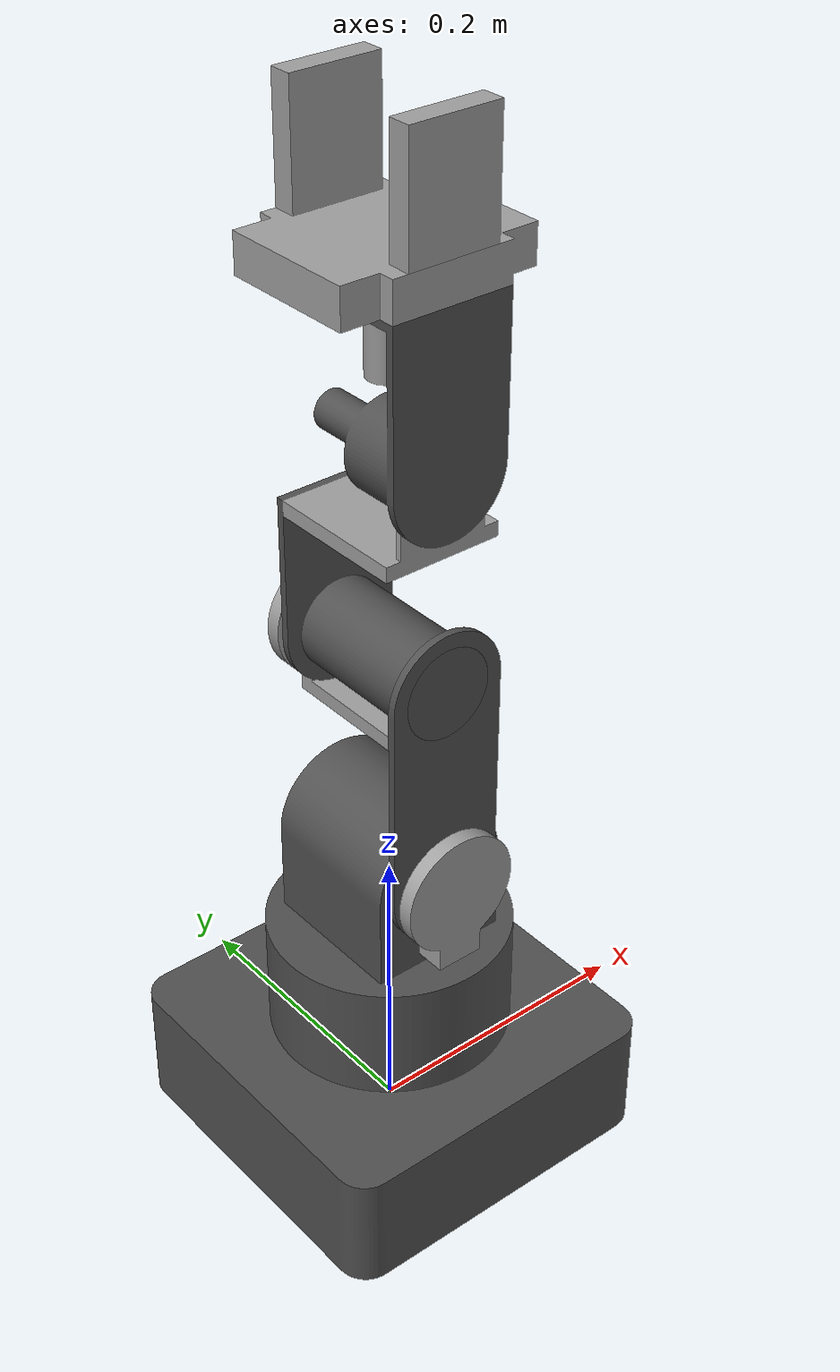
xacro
<?xml version="1.0"?>
<robot xmlns:xacro="http://www.ros.org/wiki/xacro" name="marav1">

  <!-- Materials (shared across all assemblies) -->
  <material name="Generic">
    <color rgba="0.314 0.314 0.314 1.0"/>
  </material>
  <material name="Steel">
    <color rgba="0.627 0.627 0.627 1.0"/>
  </material>

  <!-- Assembly includes -->
  <xacro:include filename="$(find marav1_description)/urdf/assemblies/marav1.urdf.xacro"/>

  <!-- Instantiate assemblies -->
  <xacro:marav1 prefix=""/>

</robot>

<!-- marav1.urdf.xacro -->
<robot xmlns:xacro="http://www.ros.org/wiki/xacro" name="marav1_macro">

  <xacro:macro name="marav1" params="prefix">

    <!-- Links -->
    <link name="${prefix}base_link">
      <inertial>
        <origin xyz="-0.000000 0.000000 0.059067" rpy="0 0 0"/>
        <mass value="6.450568"/>
        <inertia ixx="3.760489e-02" ixy="0.000000e+00" ixz="0.000000e+00"
                 iyy="3.760489e-02" iyz="0.000000e+00" izz="5.094901e-02"/>
      </inertial>
      <visual>
        <origin xyz="0.000000 0.000000 0.000000" rpy="0.000000 0.000000 0.000000"/>
        <geometry>
          <mesh filename="package://marav1_description/meshes/marav1/base_link.dae" scale="1 1 1"/>
        </geometry>
        <material name="Generic"/>
      </visual>
      <collision>
        <origin xyz="0.000000 0.000000 0.000000" rpy="0.000000 0.000000 0.000000"/>
        <geometry>
          <mesh filename="package://marav1_description/meshes/marav1/base_link.dae" scale="1 1 1"/>
        </geometry>
      </collision>
    </link>

    <link name="${prefix}2nd_link">
      <inertial>
        <origin xyz="-0.000000 0.000000 0.116114" rpy="0 0 0"/>
        <mass value="0.645342"/>
        <inertia ixx="1.213519e-03" ixy="0.000000e+00" ixz="0.000000e+00"
                 iyy="1.232369e-03" iyz="0.000000e+00" izz="1.086307e-03"/>
      </inertial>
      <visual>
        <origin xyz="0.000000 0.000000 0.160000" rpy="3.141593 0.000000 0.000000"/>
        <geometry>
          <mesh filename="package://marav1_description/meshes/marav1/2nd_link.dae" scale="1 1 1"/>
        </geometry>
        <material name="Generic"/>
      </visual>
      <collision>
        <origin xyz="0.000000 0.000000 0.160000" rpy="3.141593 0.000000 0.000000"/>
        <geometry>
          <mesh filename="package://marav1_description/meshes/marav1/2nd_link.dae" scale="1 1 1"/>
        </geometry>
      </collision>
    </link>

    <link name="${prefix}1st_encoder">
      <inertial>
        <origin xyz="0.000000 -0.064450 0.216830" rpy="0 0 0"/>
        <mass value="0.457037"/>
        <inertia ixx="2.812931e-04" ixy="0.000000e+00" ixz="0.000000e+00"
                 iyy="4.400538e-04" iyz="1.050758e-05" izz="1.711258e-04"/>
      </inertial>
      <visual>
        <origin xyz="0.000000 0.000000 0.000000" rpy="0.000000 0.000000 0.000000"/>
        <geometry>
          <mesh filename="package://marav1_description/meshes/marav1/1st_encoder.dae" scale="1 1 1"/>
        </geometry>
        <material name="Steel"/>
      </visual>
      <collision>
        <origin xyz="0.000000 0.000000 0.000000" rpy="0.000000 0.000000 0.000000"/>
        <geometry>
          <mesh filename="package://marav1_description/meshes/marav1/1st_encoder.dae" scale="1 1 1"/>
        </geometry>
      </collision>
    </link>

    <link name="${prefix}3rd_link">
      <inertial>
        <origin xyz="0.000000 -0.212420 0.005057" rpy="0 0 0"/>
        <mass value="0.349739"/>
        <inertia ixx="8.111995e-04" ixy="0.000000e+00" ixz="0.000000e+00"
                 iyy="4.853991e-04" iyz="-1.570435e-04" izz="5.265127e-04"/>
      </inertial>
      <visual>
        <origin xyz="0.000000 -0.223000 0.050000" rpy="-1.570796 0.000000 0.000000"/>
        <geometry>
          <mesh filename="package://marav1_description/meshes/marav1/3rd_link.dae" scale="1 1 1"/>
        </geometry>
        <material name="Generic"/>
      </visual>
      <collision>
        <origin xyz="0.000000 -0.223000 0.050000" rpy="-1.570796 0.000000 0.000000"/>
        <geometry>
          <mesh filename="package://marav1_description/meshes/marav1/3rd_link.dae" scale="1 1 1"/>
        </geometry>
      </collision>
    </link>

    <link name="${prefix}2nd_encoder">
      <inertial>
        <origin xyz="0.000000 -0.138267 0.202407" rpy="0 0 0"/>
        <mass value="0.694601"/>
        <inertia ixx="1.339629e-03" ixy="0.000000e+00" ixz="0.000000e+00"
                 iyy="7.336782e-04" iyz="4.169385e-04" izz="9.739059e-04"/>
      </inertial>
      <visual>
        <origin xyz="0.000000 0.000000 0.000000" rpy="0.000000 0.000000 0.000000"/>
        <geometry>
          <mesh filename="package://marav1_description/meshes/marav1/2nd_encoder.dae" scale="1 1 1"/>
        </geometry>
        <material name="Steel"/>
      </visual>
      <collision>
        <origin xyz="0.000000 0.000000 0.000000" rpy="0.000000 0.000000 0.000000"/>
        <geometry>
          <mesh filename="package://marav1_description/meshes/marav1/2nd_encoder.dae" scale="1 1 1"/>
        </geometry>
      </collision>
    </link>

    <link name="${prefix}4th_link">
      <inertial>
        <origin xyz="-0.000000 -0.358006 0.101929" rpy="0 0 0"/>
        <mass value="0.334110"/>
        <inertia ixx="5.375402e-04" ixy="0.000000e+00" ixz="0.000000e+00"
                 iyy="4.448757e-04" iyz="7.412763e-05" izz="2.713387e-04"/>
      </inertial>
      <visual>
        <origin xyz="0.000000 -0.363000 0.055000" rpy="1.570796 0.000000 3.141593"/>
        <geometry>
          <mesh filename="package://marav1_description/meshes/marav1/4th_link.dae" scale="1 1 1"/>
        </geometry>
        <material name="Generic"/>
      </visual>
      <collision>
        <origin xyz="0.000000 -0.363000 0.055000" rpy="1.570796 0.000000 3.141593"/>
        <geometry>
          <mesh filename="package://marav1_description/meshes/marav1/4th_link.dae" scale="1 1 1"/>
        </geometry>
      </collision>
    </link>

    <link name="${prefix}wrist_base">
      <inertial>
        <origin xyz="0.000000 -0.099628 0.175927" rpy="0 0 0"/>
        <mass value="0.626937"/>
        <inertia ixx="5.202821e-04" ixy="0.000000e+00" ixz="0.000000e+00"
                 iyy="3.449137e-04" iyz="2.461930e-05" izz="8.337110e-04"/>
      </inertial>
      <visual>
        <origin xyz="0.000000 0.000000 0.000000" rpy="0.000000 0.000000 0.000000"/>
        <geometry>
          <mesh filename="package://marav1_description/meshes/marav1/wrist_base.dae" scale="1 1 1"/>
        </geometry>
        <material name="Steel"/>
      </visual>
      <collision>
        <origin xyz="0.000000 0.000000 0.000000" rpy="0.000000 0.000000 0.000000"/>
        <geometry>
          <mesh filename="package://marav1_description/meshes/marav1/wrist_base.dae" scale="1 1 1"/>
        </geometry>
      </collision>
    </link>

    <link name="${prefix}5th_link">
      <inertial>
        <origin xyz="0.000000 0.077420 0.033596" rpy="0 0 0"/>
        <mass value="0.260482"/>
        <inertia ixx="6.404395e-04" ixy="0.000000e+00" ixz="0.000000e+00"
                 iyy="2.842973e-04" iyz="4.233056e-05" izz="5.191967e-04"/>
      </inertial>
      <visual>
        <origin xyz="0.000000 0.000000 0.000000" rpy="1.570796 0.000000 -3.141593"/>
        <geometry>
          <mesh filename="package://marav1_description/meshes/marav1/5th_link.dae" scale="1 1 1"/>
        </geometry>
        <material name="Generic"/>
      </visual>
      <collision>
        <origin xyz="0.000000 0.000000 0.000000" rpy="1.570796 0.000000 -3.141593"/>
        <geometry>
          <mesh filename="package://marav1_description/meshes/marav1/5th_link.dae" scale="1 1 1"/>
        </geometry>
      </collision>
    </link>

    <link name="${prefix}gripper_motor">
      <inertial>
        <origin xyz="-0.000000 0.000000 0.570500" rpy="0 0 0"/>
        <mass value="0.211935"/>
        <inertia ixx="6.170393e-05" ixy="0.000000e+00" ixz="0.000000e+00"
                 iyy="6.170393e-05" iyz="0.000000e+00" izz="1.655740e-05"/>
      </inertial>
      <visual>
        <origin xyz="0.000000 0.000000 0.000000" rpy="0.000000 0.000000 0.000000"/>
        <geometry>
          <mesh filename="package://marav1_description/meshes/marav1/gripper_motor.dae" scale="1 1 1"/>
        </geometry>
        <material name="Steel"/>
      </visual>
      <collision>
        <origin xyz="0.000000 0.000000 0.000000" rpy="0.000000 0.000000 0.000000"/>
        <geometry>
          <mesh filename="package://marav1_description/meshes/marav1/gripper_motor.dae" scale="1 1 1"/>
        </geometry>
      </collision>
    </link>

    <link name="${prefix}camera_holder">
      <inertial>
        <origin xyz="0.000000 0.000000 0.615500" rpy="0 0 0"/>
        <mass value="2.610125"/>
        <inertia ixx="2.473445e-03" ixy="0.000000e+00" ixz="0.000000e+00"
                 iyy="3.537120e-03" iyz="0.000000e+00" izz="5.738677e-03"/>
      </inertial>
      <visual>
        <origin xyz="0.000000 0.000000 0.000000" rpy="0.000000 0.000000 0.000000"/>
        <geometry>
          <mesh filename="package://marav1_description/meshes/marav1/camera_holder.dae" scale="1 1 1"/>
        </geometry>
        <material name="Steel"/>
      </visual>
      <collision>
        <origin xyz="0.000000 0.000000 0.000000" rpy="0.000000 0.000000 0.000000"/>
        <geometry>
          <mesh filename="package://marav1_description/meshes/marav1/camera_holder.dae" scale="1 1 1"/>
        </geometry>
      </collision>
    </link>

    <link name="${prefix}gripper_tooth_1">
      <inertial>
        <origin xyz="0.000000 -0.007500 0.037500" rpy="0 0 0"/>
        <mass value="0.529875"/>
        <inertia ixx="2.583141e-04" ixy="0.000000e+00" ixz="0.000000e+00"
                 iyy="4.073414e-04" iyz="0.000000e+00" izz="1.688977e-04"/>
      </inertial>
      <visual>
        <origin xyz="0.000000 -0.055000 -0.628000" rpy="0.000000 0.000000 0.000000"/>
        <geometry>
          <mesh filename="package://marav1_description/meshes/marav1/gripper_tooth_1.dae" scale="1 1 1"/>
        </geometry>
        <material name="Steel"/>
      </visual>
      <collision>
        <origin xyz="0.000000 -0.055000 -0.628000" rpy="0.000000 0.000000 0.000000"/>
        <geometry>
          <mesh filename="package://marav1_description/meshes/marav1/gripper_tooth_1.dae" scale="1 1 1"/>
        </geometry>
      </collision>
    </link>

    <link name="${prefix}gripper_tooth_2">
      <inertial>
        <origin xyz="0.000000 0.102500 0.037500" rpy="0 0 0"/>
        <mass value="0.529875"/>
        <inertia ixx="2.583141e-04" ixy="0.000000e+00" ixz="0.000000e+00"
                 iyy="4.073414e-04" iyz="0.000000e+00" izz="1.688977e-04"/>
      </inertial>
      <visual>
        <origin xyz="0.000000 0.055000 -0.628000" rpy="0.000000 0.000000 0.000000"/>
        <geometry>
          <mesh filename="package://marav1_description/meshes/marav1/gripper_tooth_2.dae" scale="1 1 1"/>
        </geometry>
        <material name="Steel"/>
      </visual>
      <collision>
        <origin xyz="0.000000 0.055000 -0.628000" rpy="0.000000 0.000000 0.000000"/>
        <geometry>
          <mesh filename="package://marav1_description/meshes/marav1/gripper_tooth_2.dae" scale="1 1 1"/>
        </geometry>
      </collision>
    </link>

    <!-- Joints (internal to assembly) -->
    <joint name="${prefix}Revolute_1" type="continuous">
      <parent link="${prefix}base_link"/>
      <child link="${prefix}2nd_link"/>
      <origin xyz="0.000000 0.000000 0.322000" rpy="3.141593 0.000000 0.000000"/>
      <axis xyz="0.000000 0.000000 1.000000"/>
      <limit effort="100.0" velocity="1.00"/>
    </joint>

    <joint name="${prefix}Rigid_10" type="fixed">
      <parent link="${prefix}2nd_link"/>
      <child link="${prefix}1st_encoder"/>
      <origin xyz="0.000000 0.000000 0.322000" rpy="3.141593 0.000000 0.000000"/>
    </joint>

    <joint name="${prefix}Revolute_2" type="continuous">
      <parent link="${prefix}2nd_link"/>
      <child link="${prefix}3rd_link"/>
      <origin xyz="0.000000 0.005000 -0.124000" rpy="-1.570796 0.000000 0.000000"/>
      <axis xyz="0.000000 0.000000 1.000000"/>
      <limit effort="100.0" velocity="1.00"/>
    </joint>

    <joint name="${prefix}Rigid_14" type="fixed">
      <parent link="${prefix}3rd_link"/>
      <child link="${prefix}2nd_encoder"/>
      <origin xyz="-0.000000 -0.306000 0.095169" rpy="1.570796 0.000000 3.141593"/>
    </joint>

    <joint name="${prefix}Revolute_3" type="continuous">
      <parent link="${prefix}3rd_link"/>
      <child link="${prefix}4th_link"/>
      <origin xyz="0.000000 0.280000 -0.110000" rpy="0.000000 0.000000 0.000000"/>
      <axis xyz="0.000000 0.000000 1.000000"/>
      <limit effort="100.0" velocity="1.00"/>
    </joint>

    <joint name="${prefix}Rigid_13" type="fixed">
      <parent link="${prefix}4th_link"/>
      <child link="${prefix}wrist_base"/>
      <origin xyz="-0.000000 -0.446000 0.009831" rpy="-1.570796 0.000000 0.000000"/>
    </joint>

    <joint name="${prefix}Revolute_4" type="continuous">
      <parent link="${prefix}4th_link"/>
      <child link="${prefix}5th_link"/>
      <origin xyz="0.000000 -0.123000 0.160000" rpy="3.141593 0.000000 0.000000"/>
      <axis xyz="0.000000 0.000000 1.000000"/>
      <limit effort="100.0" velocity="1.00"/>
    </joint>

    <joint name="${prefix}Rigid_15" type="fixed">
      <parent link="${prefix}5th_link"/>
      <child link="${prefix}gripper_motor"/>
      <origin xyz="0.000000 0.603000 0.055000" rpy="1.570796 0.000000 0.000000"/>
    </joint>

    <joint name="${prefix}Rigid_5" type="fixed">
      <parent link="${prefix}5th_link"/>
      <child link="${prefix}camera_holder"/>
      <origin xyz="0.000000 0.603000 0.055000" rpy="1.570796 0.000000 0.000000"/>
    </joint>

    <joint name="${prefix}Slider_7" type="prismatic">
      <parent link="${prefix}camera_holder"/>
      <child link="${prefix}gripper_tooth_1"/>
      <origin xyz="0.000000 0.055000 0.628000" rpy="0.000000 0.000000 0.000000"/>
      <axis xyz="0.000000 -1.000000 0.000000"/>
      <limit lower="0.000000" upper="0.040000" effort="100.0" velocity="1.00"/>
    </joint>

    <joint name="${prefix}Slider_12" type="prismatic">
      <parent link="${prefix}camera_holder"/>
      <child link="${prefix}gripper_tooth_2"/>
      <origin xyz="0.000000 -0.150000 0.628000" rpy="0.000000 0.000000 0.000000"/>
      <axis xyz="0.000000 1.000000 0.000000"/>
      <limit lower="0.000000" upper="0.040000" effort="100.0" velocity="1.00"/>
    </joint>

    <!-- ROS 2 control: generated generic system -->
    <ros2_control name="${prefix}marav1_system" type="system">
      <hardware>
        <plugin>mock_components/GenericSystem</plugin>
        <param name="cmd_topic">sim/marav1_system/cmd</param>
        <param name="state_topic">sim/marav1_system/state</param>
      </hardware>

      <joint name="${prefix}Revolute_1">
        <command_interface name="position"/>
        <command_interface name="velocity"/>
        <state_interface name="position">
          <param name="initial_value">0.0</param>
        </state_interface>
        <state_interface name="velocity"/>
        <state_interface name="effort"/>
      </joint>
      <joint name="${prefix}Revolute_2">
        <command_interface name="position"/>
        <command_interface name="velocity"/>
        <state_interface name="position">
          <param name="initial_value">0.0</param>
        </state_interface>
        <state_interface name="velocity"/>
        <state_interface name="effort"/>
      </joint>
      <joint name="${prefix}Revolute_3">
        <command_interface name="position"/>
        <command_interface name="velocity"/>
        <state_interface name="position">
          <param name="initial_value">0.0</param>
        </state_interface>
        <state_interface name="velocity"/>
        <state_interface name="effort"/>
      </joint>
      <joint name="${prefix}Revolute_4">
        <command_interface name="position"/>
        <command_interface name="velocity"/>
        <state_interface name="position">
          <param name="initial_value">0.0</param>
        </state_interface>
        <state_interface name="velocity"/>
        <state_interface name="effort"/>
      </joint>
      <joint name="${prefix}Slider_12">
        <command_interface name="position"/>
        <command_interface name="velocity"/>
        <state_interface name="position">
          <param name="initial_value">0.0</param>
        </state_interface>
        <state_interface name="velocity"/>
        <state_interface name="effort"/>
      </joint>
      <joint name="${prefix}Slider_7">
        <command_interface name="position"/>
        <command_interface name="velocity"/>
        <state_interface name="position">
          <param name="initial_value">0.0</param>
        </state_interface>
        <state_interface name="velocity"/>
        <state_interface name="effort"/>
      </joint>
    </ros2_control>

  </xacro:macro>

</robot>
